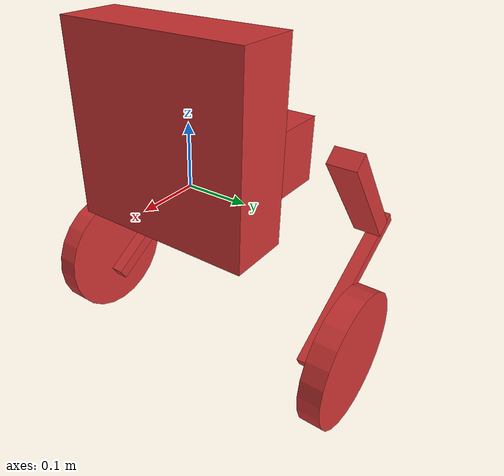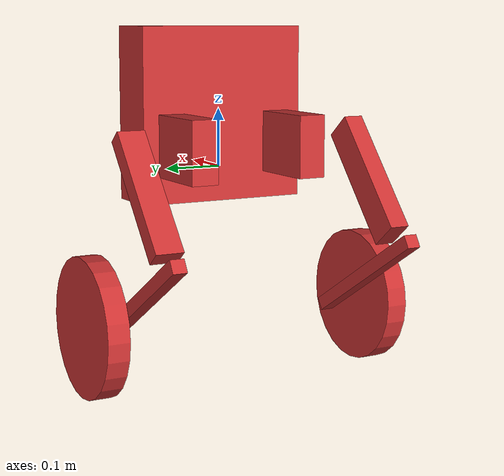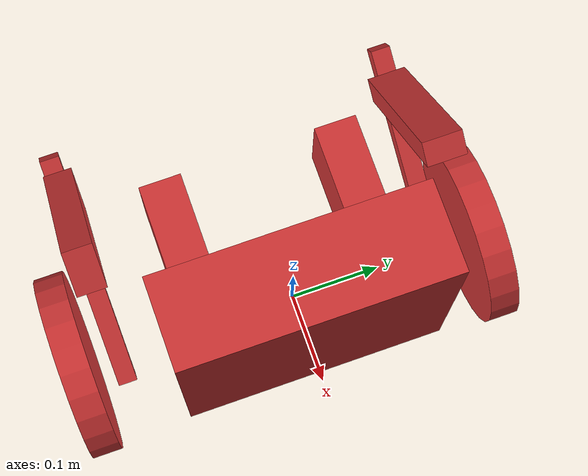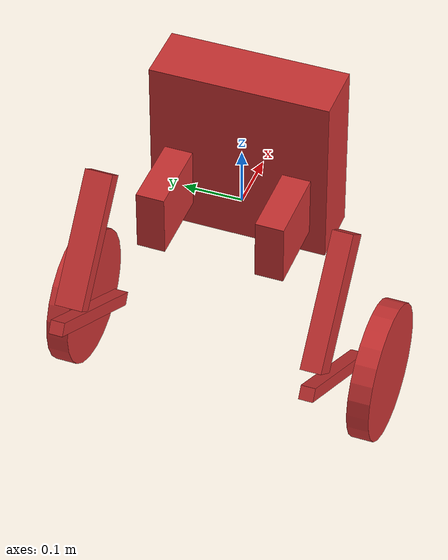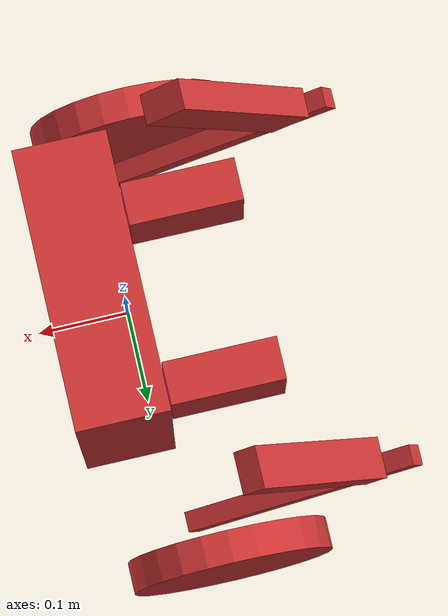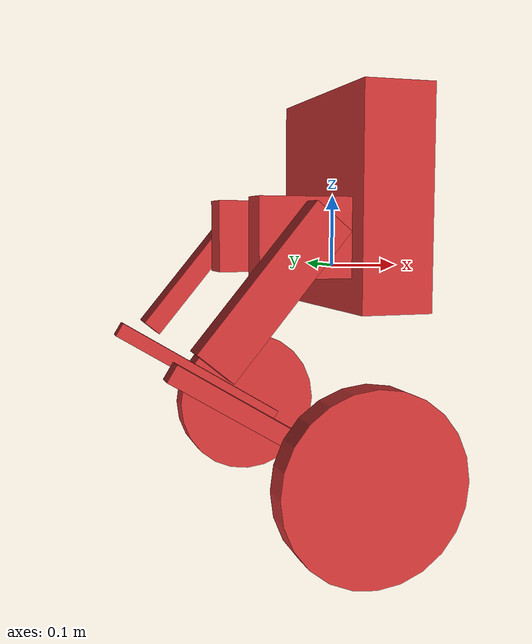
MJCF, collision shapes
<mujoco model="flamingo_v1_5_1">
    <compiler angle="radian" />
    <option timestep="0.005" gravity="0 0 -9.807" iterations="50" solver="Newton" jacobian="dense" integrator="implicitfast"/>

    <visual>
        <headlight diffuse="1 1 1" ambient="0.3 0.3 0.3" specular="0 0 0"/>
        <rgba haze="0.15 0.25 0.35 1"/>
        <global azimuth="220" elevation="-20"/>
    </visual>

    <default>
        <default class="visual">
            <geom type="mesh" contype="0" conaffinity="0" group="2"/>
        </default>

        <default class="collision">
            <geom group="3"/>
        </default>

        <default class="collision_mesh">
            <geom contype="1" conaffinity="1" group="0"/>
        </default>

        <default class='joints'>
            <joint damping="0.75" stiffness="0.0" frictionloss="0.1" armature="0.01" actuatorfrclimited="true" actuatorfrcrange="-1000 1000"/>
        </default>
        <default class='wheels'>
            <joint damping="0.0" stiffness="0.0" frictionloss="0.1" armature="0.01" actuatorfrclimited="true" actuatorfrcrange="-1000 1000"/>
        </default>
    </default>

    <worldbody>

        <body name="base_link">
            <inertial pos="-0.00543 -0.00007 0.09091" quat="0.9715 0.0224 -0.2347 -0.0077" mass="5.42961" diaginertia="0.06019 0.03502 0.0371"/>
            <geom size="0.05 0.15 0.15" pos="0.0315 0 0.092" type="box" rgba="0.8 0.2 0.2 0.3" class="collision"/>
            <geom type="mesh" mesh="base_link" rgba="0.2 0.2 0.2 1" class="visual"/>
            <site name="base_link_site" pos="0 0 0" size="0.01" rgba="0.2 0.2 0.2 1" />
            <joint name="base_free_joint" type="free" damping="0.0" />
            <site name='imu' size='0.01' pos='0.0 0 0.0'/>
            <body name="left_hip_link" pos="-0.02225 0.1 0.042" quat="0.499998 0.5 -0.500002 -0.5">
            <inertial pos="0.0172752 -0.0004334 0.0745544" quat="0.999907 -4.74243e-05 0.0136478 1.61815e-05" mass="1.20402" diaginertia="0.00238212 0.00170342 0.0012895"/>
            <geom type="mesh" rgba="0.15 0.15 0.15 1" mesh="left_hip_link" class="visual"/>
            <joint name="left_hip_joint" pos="0 0 0" axis="0 0 1" range="-0.6 0.6" class="joints"/>
            <geom size="0.02375 0.053 0.063" pos="0 0 0.063" type="box" rgba="0.8 0.2 0.2 0.3" class="collision"/>
                <body name="left_shoulder_link" pos="-0.02225 0 0.077" quat="0.707105 0 -0.707108 0">
                    <inertial pos="0.011697 -0.0143515 0.039404" quat="0.155543 0.532859 -0.374994 0.74246" mass="1.5513" diaginertia="0.00893024 0.00889867 0.00212189"/>
                    <geom type="mesh" rgba="0.15 0.15 0.15 1" mesh="left_shoulder_link" class="visual"/>
                    <joint name="left_shoulder_joint" pos="0 0 0" axis="0 0 1" range="-1.0754 1.0754" class="joints"/>
                    <geom size="0.015 0.1125 0.02375" pos="0.06 -0.06 0.085" quat="0.338946 0 0 -0.940806" type="box" rgba="0.8 0.2 0.2 0.3" class="collision"/>
                    <body name="left_leg_link" pos="0.14138 -0.16856 0.0895">
                    <inertial pos="-0.18286 -0.115381 -0.0463015" quat="-0.208425 0.642861 0.190843 0.711947" mass="1.2006" diaginertia="0.00681281 0.00654077 0.00114482"/>
                    <geom type="mesh" rgba="0.15 0.15 0.15 1" mesh="left_leg_link" class="visual"/>
                    <joint name="left_leg_joint" pos="0 0 0" axis="0 0 1" range="-1.0754 1.0754" class="joints"/>
                    <geom size="0.1525 0.0115 0.012" pos="-0.09 -0.06 0" quat="0.962425 0 0 0.271547" type="box" rgba="0.8 0.2 0.2 0.3" class="collision"/>
                        <body name="left_wheel_link" pos="-0.18547 -0.11832 -0.009">
                            <inertial pos="-9.32e-06 0.00028106 0.0421318" quat="0.5 0.5 -0.5 0.5" mass="0.9575" diaginertia="0.00566733 0.00313555 0.00313555"/>
                            <geom type="mesh" mesh="left_wheel_link" rgba="0.2 0.2 0.2 1" class="visual"/>
                            <joint name="left_wheel_joint" pos="0 0 0" axis="0 0 1" type="hinge" limited="false" class="wheels"/>
                            <geom size="0.118 0.01875" pos="0 0 0.06025" type="cylinder" rgba="0.8 0.2 0.2 0.3" class="collision"/>
                        </body>
                    </body>
                </body>
            </body>
            <body name="right_hip_link" pos="-0.02225 -0.1 0.042" quat="0.499998 0.5 -0.500002 -0.5">
            <inertial pos="-0.0172739 0.0004348 0.0745547" quat="0.999907 4.74243e-05 -0.0136478 1.61815e-05" mass="1.20402" diaginertia="0.00238212 0.00170342 0.0012895"/>
            <geom type="mesh" rgba="0.15 0.15 0.15 1" mesh="right_hip_link" class="visual"/>
            <joint name="right_hip_joint" pos="0 0 0" axis="0 0 1" range="-0.6 0.6" class="joints"/>
            <geom size="0.02375 0.053 0.063" pos="0 0 0.063" type="box" rgba="0.8 0.2 0.2 0.3" class="collision"/>
                <body name="right_shoulder_link" pos="0.02225 0 0.077" quat="0.707105 0 0.707108 0">
                    <inertial pos="-0.0128798 -0.014462 0.0394047" quat="0.742397 0.374773 -0.533015 0.155842" mass="1.5513" diaginertia="0.00893029 0.00889871 0.00212192"/>
                    <geom type="mesh" rgba="0.15 0.15 0.15 1" mesh="right_shoulder_link" class="visual"/>
                    <joint name="right_shoulder_joint" pos="0 0 0" axis="0 0 -1" range="-1.0754 1.0754" class="joints"/>
                    <geom size="0.028 0.1125 0.0175" pos="-0.06 -0.06 0.085" quat="0.338946 0 0 0.940806" type="box" rgba="0.8 0.2 0.2 0.3" class="collision"/>
                    <body name="right_leg_link" pos="-0.14138 -0.16856 0.0895">
                    <inertial pos="0.182461 -0.116691 -0.0463385" quat="0.19256 0.712522 -0.20649 0.642336" mass="1.2006" diaginertia="0.00681563 0.0065466 0.00114254"/>
                    <geom type="mesh" rgba="0.15 0.15 0.15 1" mesh="right_leg_link" class="visual"/>
                    <joint name="right_leg_joint" pos="0 0 0" axis="0 0 -1" range="-1.0754 1.0754" class="joints"/>
                    <geom size="0.1525 0.0115 0.012" pos="0.09 -0.06 0" quat="0.962425 0 0 -0.271547" type="box" rgba="0.8 0.2 0.2 0.3" class="collision"/>
                        <body name="right_wheel_link" pos="0.18547 -0.11832 -0.009">
                            <inertial pos="6.639e-05 0.00027326 0.0421318" quat="0.5 0.5 -0.5 0.5" mass="0.9575" diaginertia="0.00566733 0.00313555 0.00313555"/>
                            <geom type="mesh" mesh="right_wheel_link" rgba="0.2 0.2 0.2 1" class="visual"/>
                            <joint name="right_wheel_joint" pos="0 0 0" axis="0 0 -1" type="hinge" limited="false" class="wheels"/>
                            <geom size="0.118 0.01875" pos="0 0 0.06025" type="cylinder" rgba="0.8 0.2 0.2 0.3" class="collision"/>
                        </body>
                    </body>
                </body>
            </body>

            <geom type="mesh" pos="0.05875 0 0.047" quat="1 0 0 0" rgba="0.15 0.15 0.15 1" mesh="sbc_pdb_link" class="visual"/>
            <geom type="mesh" pos="0.03435 0.099989 0.042" quat="1 0 0 0" rgba="0.15 0.15 0.15 1" mesh="base_left_motor_link" class="visual"/>
            <geom type="mesh" pos="0.03435 -0.10001 0.042" quat="1 0 0 0" rgba="0.15 0.15 0.15 1" mesh="base_right_motor_link" class="visual"/>
            <geom type="mesh" pos="-0.0379 0 0.156" quat="1 0 0 0" rgba="0.15 0.15 0.15 1" mesh="battery_link" class="visual"/>
            <geom type="mesh" pos="-0.05975 0 0.227" quat="1 0 0 0" rgba="0.15 0.15 0.15 1" mesh="base_profile_link" class="visual"/>
            <geom type="mesh" pos="-0.033483 0.035988 0.205" quat="0 1 0 0" rgba="0.15 0.15 0.15 1" mesh="sbc_link" class="visual"/>

            <geom type="mesh" pos="-0.039666 -0.054781 0.191" quat="1 0 0 0" rgba="0.15 0.15 0.15 1" mesh="main_pdb_link" class="visual"/>
            <geom type="mesh" pos="-0.07875 0 0.242" quat="1 0 0 0" rgba="0.15 0.15 0.15 1" mesh="switch_link" class="visual"/>
            <geom type="mesh" pos="0.02375 0 0.052157" quat="1 0 0 0" rgba="0.15 0.15 0.15 1" mesh="front_plate_link" class="visual"/>
            <geom type="mesh" pos="-0.02375 0 0.0593568" quat="1 0 0 0" rgba="0.15 0.15 0.15 1" mesh="back_plate_link" class="visual"/>
            <geom type="mesh" pos="0.07925 0 0.16004" quat="1 0 0 0" rgba="0.15 0.15 0.15 1" mesh="front_cover_link" class="visual"/>
        </body>
    </worldbody>

    <asset>
        <texture type="skybox" builtin="gradient" rgb1="0.3 0.5 0.7" rgb2="0 0 0" width="512" height="3072"/>
        <texture type="2d" name="groundplane" builtin="checker" mark="edge" rgb1="0.2 0.3 0.4" rgb2="0.1 0.2 0.3" markrgb="0.8 0.8 0.8" width="300" height="300"/>
        <material name="MatPlane" texture="groundplane" texuniform="true" texrepeat="5 5" reflectance="0.2"/>
        <material name="rubber" rgba="0.4 0.4 0.4 1" shininess="0.5" reflectance="0.2"/>

        <mesh name="base_link" file="./mesh/base_link.STL"/>
        <mesh name="left_hip_link" file="./mesh/left_hip_link.STL"/>
        <mesh name="left_shoulder_link" file="./mesh/left_shoulder_link.STL"/>
        <mesh name="left_leg_link" file="./mesh/left_leg_link.STL"/>
        <mesh name="left_wheel_link" file="./mesh/left_wheel_link.STL"/>
        <mesh name="right_hip_link" file="./mesh/right_hip_link.STL"/>
        <mesh name="right_shoulder_link" file="./mesh/right_shoulder_link.STL"/>
        <mesh name="right_leg_link" file="./mesh/right_leg_link.STL"/>
        <mesh name="right_wheel_link" file="./mesh/right_wheel_link.STL"/>
        <mesh name="sbc_pdb_link" file="./mesh/sbc_pdb_link.STL"/>
        <mesh name="base_left_motor_link" file="./mesh/base_left_motor_link.STL"/>
        <mesh name="base_right_motor_link" file="./mesh/base_right_motor_link.STL"/>
        <mesh name="battery_link" file="./mesh/battery_link.STL"/>
        <mesh name="base_profile_link" file="./mesh/base_profile_link.STL"/>
        <mesh name="sbc_link" file="./mesh/sbc_link.STL"/>
        <mesh name="main_pdb_link" file="./mesh/main_pdb_link.STL"/>
        <mesh name="switch_link" file="./mesh/switch_link.STL"/>
        <mesh name="front_plate_link" file="./mesh/front_plate_link.STL"/>
        <mesh name="back_plate_link" file="./mesh/back_plate_link.STL"/>
        <mesh name="front_cover_link" file="./mesh/front_cover_link.STL"/>

    </asset>

    <actuator>
        <motor joint="left_hip_joint" name="left_hip_joint" ctrllimited="true" ctrlrange="-1000 1000"  gear="1" />
        <motor joint="right_hip_joint" name="right_hip_joint" ctrllimited="true" ctrlrange="-1000 1000"  gear="1"/>
        <motor joint="left_shoulder_joint" name="left_shoulder_joint" ctrllimited="true" ctrlrange="-1000 1000"  gear="1"/>
        <motor joint="right_shoulder_joint" name="right_shoulder_joint" ctrllimited="true" ctrlrange="-1000 1000"  gear="1"/>
        <motor joint="left_leg_joint" name="left_leg_joint" ctrllimited="true" ctrlrange="-1000 1000"  gear="1"/>
        <motor joint="right_leg_joint" name="right_leg_joint" ctrllimited="true" ctrlrange="-1000 1000"  gear="1"/>

        <motor joint="left_wheel_joint" name="left_wheel_joint" ctrllimited="true" ctrlrange="-1000 1000" gear="1"/>
        <motor joint="right_wheel_joint" name="right_wheel_joint"  ctrllimited="true" ctrlrange="-1000 1000" gear="1"/>
    </actuator>

</mujoco>
